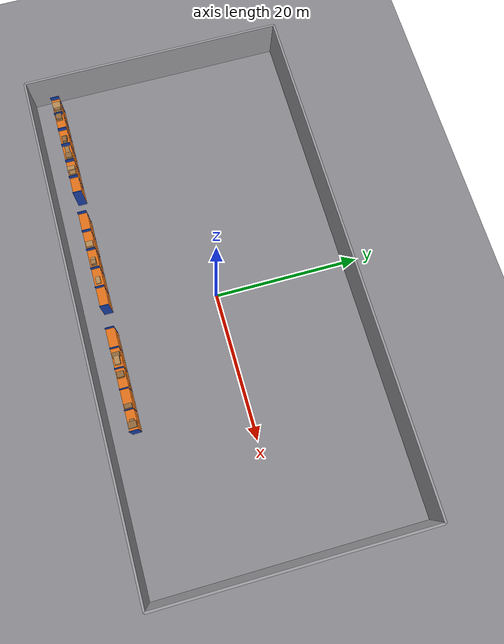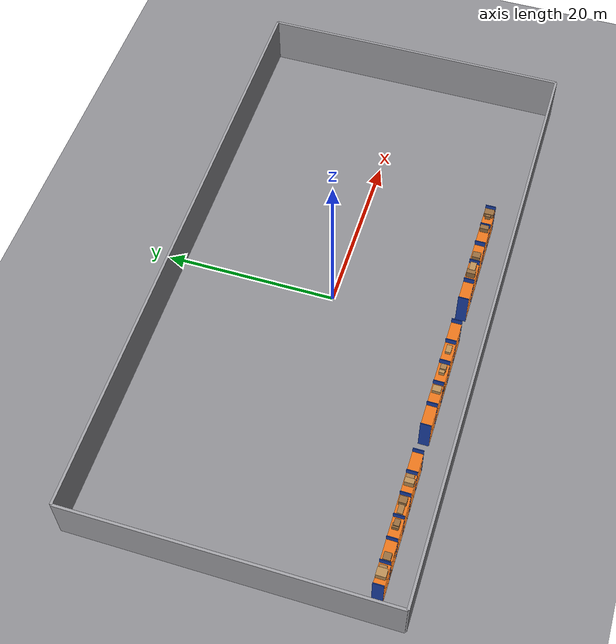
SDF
<sdf version="1.9">
 <world name="warehouse">
  <model name="ground_plane">
   <static>true</static>
   <link name="link">
    <collision name="collision">
     <geometry><plane><normal>0 0 1</normal><size>1 1</size></plane></geometry>
    </collision>
    <visual name="visual">
     <geometry><plane><normal>0 0 1</normal><size>200 100</size></plane></geometry>
     <material>
      <ambient>0.55 0.55 0.57 1</ambient>
      <diffuse>0.55 0.55 0.57 1</diffuse>
      <specular>0.1 0.1 0.1 1</specular>
     </material>
    </visual>
   </link>
  </model>
  <model name="walls">
   <static>true</static>
   <link name="link">
    <collision name="n_c">
     <pose>0.000 18.150 3.000 0 0 0</pose>
     <geometry><box><size>70.300 0.300 6.000</size></box></geometry>
    </collision>
    <visual name="n_v">
     <pose>0.000 18.150 3.000 0 0 0</pose>
     <geometry><box><size>70.300 0.300 6.000</size></box></geometry>
     <material>
      <ambient>0.62 0.62 0.64 1</ambient>
      <diffuse>0.62 0.62 0.64 1</diffuse>
      <specular>0.1 0.1 0.1 1</specular>
     </material>
    </visual>
    <collision name="s_c">
     <pose>0.000 -18.150 3.000 0 0 0</pose>
     <geometry><box><size>70.300 0.300 6.000</size></box></geometry>
    </collision>
    <visual name="s_v">
     <pose>0.000 -18.150 3.000 0 0 0</pose>
     <geometry><box><size>70.300 0.300 6.000</size></box></geometry>
     <material>
      <ambient>0.62 0.62 0.64 1</ambient>
      <diffuse>0.62 0.62 0.64 1</diffuse>
      <specular>0.1 0.1 0.1 1</specular>
     </material>
    </visual>
    <collision name="e_c">
     <pose>35.150 0.000 3.000 0 0 0</pose>
     <geometry><box><size>0.300 36.300 6.000</size></box></geometry>
    </collision>
    <visual name="e_v">
     <pose>35.150 0.000 3.000 0 0 0</pose>
     <geometry><box><size>0.300 36.300 6.000</size></box></geometry>
     <material>
      <ambient>0.62 0.62 0.64 1</ambient>
      <diffuse>0.62 0.62 0.64 1</diffuse>
      <specular>0.1 0.1 0.1 1</specular>
     </material>
    </visual>
    <collision name="w_c">
     <pose>-35.150 0.000 3.000 0 0 0</pose>
     <geometry><box><size>0.300 36.300 6.000</size></box></geometry>
    </collision>
    <visual name="w_v">
     <pose>-35.150 0.000 3.000 0 0 0</pose>
     <geometry><box><size>0.300 36.300 6.000</size></box></geometry>
     <material>
      <ambient>0.62 0.62 0.64 1</ambient>
      <diffuse>0.62 0.62 0.64 1</diffuse>
      <specular>0.1 0.1 0.1 1</specular>
     </material>
    </visual>
   </link>
  </model>
  <model name="rack0">
   <static>true</static>
   <link name="link">
    <collision name="up0_c">
     <pose>-33.000 -14.700 2.250 0 0 0</pose>
     <geometry><box><size>0.080 1.200 4.500</size></box></geometry>
    </collision>
    <visual name="up0_v">
     <pose>-33.000 -14.700 2.250 0 0 0</pose>
     <geometry><box><size>0.080 1.200 4.500</size></box></geometry>
     <material>
      <ambient>0.1 0.25 0.65 1</ambient>
      <diffuse>0.1 0.25 0.65 1</diffuse>
      <specular>0.1 0.1 0.1 1</specular>
     </material>
    </visual>
    <collision name="up1_c">
     <pose>-30.500 -14.700 2.250 0 0 0</pose>
     <geometry><box><size>0.080 1.200 4.500</size></box></geometry>
    </collision>
    <visual name="up1_v">
     <pose>-30.500 -14.700 2.250 0 0 0</pose>
     <geometry><box><size>0.080 1.200 4.500</size></box></geometry>
     <material>
      <ambient>0.1 0.25 0.65 1</ambient>
      <diffuse>0.1 0.25 0.65 1</diffuse>
      <specular>0.1 0.1 0.1 1</specular>
     </material>
    </visual>
    <collision name="up2_c">
     <pose>-28.000 -14.700 2.250 0 0 0</pose>
     <geometry><box><size>0.080 1.200 4.500</size></box></geometry>
    </collision>
    <visual name="up2_v">
     <pose>-28.000 -14.700 2.250 0 0 0</pose>
     <geometry><box><size>0.080 1.200 4.500</size></box></geometry>
     <material>
      <ambient>0.1 0.25 0.65 1</ambient>
      <diffuse>0.1 0.25 0.65 1</diffuse>
      <specular>0.1 0.1 0.1 1</specular>
     </material>
    </visual>
    <collision name="up3_c">
     <pose>-25.500 -14.700 2.250 0 0 0</pose>
     <geometry><box><size>0.080 1.200 4.500</size></box></geometry>
    </collision>
    <visual name="up3_v">
     <pose>-25.500 -14.700 2.250 0 0 0</pose>
     <geometry><box><size>0.080 1.200 4.500</size></box></geometry>
     <material>
      <ambient>0.1 0.25 0.65 1</ambient>
      <diffuse>0.1 0.25 0.65 1</diffuse>
      <specular>0.1 0.1 0.1 1</specular>
     </material>
    </visual>
    <collision name="up4_c">
     <pose>-23.000 -14.700 2.250 0 0 0</pose>
     <geometry><box><size>0.080 1.200 4.500</size></box></geometry>
    </collision>
    <visual name="up4_v">
     <pose>-23.000 -14.700 2.250 0 0 0</pose>
     <geometry><box><size>0.080 1.200 4.500</size></box></geometry>
     <material>
      <ambient>0.1 0.25 0.65 1</ambient>
      <diffuse>0.1 0.25 0.65 1</diffuse>
      <specular>0.1 0.1 0.1 1</specular>
     </material>
    </visual>
    <collision name="up5_c">
     <pose>-20.500 -14.700 2.250 0 0 0</pose>
     <geometry><box><size>0.080 1.200 4.500</size></box></geometry>
    </collision>
    <visual name="up5_v">
     <pose>-20.500 -14.700 2.250 0 0 0</pose>
     <geometry><box><size>0.080 1.200 4.500</size></box></geometry>
     <material>
      <ambient>0.1 0.25 0.65 1</ambient>
      <diffuse>0.1 0.25 0.65 1</diffuse>
      <specular>0.1 0.1 0.1 1</specular>
     </material>
    </visual>
    <collision name="up6_c">
     <pose>-18.000 -14.700 2.250 0 0 0</pose>
     <geometry><box><size>0.080 1.200 4.500</size></box></geometry>
    </collision>
    <visual name="up6_v">
     <pose>-18.000 -14.700 2.250 0 0 0</pose>
     <geometry><box><size>0.080 1.200 4.500</size></box></geometry>
     <material>
      <ambient>0.1 0.25 0.65 1</ambient>
      <diffuse>0.1 0.25 0.65 1</diffuse>
      <specular>0.1 0.1 0.1 1</specular>
     </material>
    </visual>
    <collision name="sh0_c">
     <pose>-25.500 -14.700 0.150 0 0 0</pose>
     <geometry><box><size>15.000 1.200 0.050</size></box></geometry>
    </collision>
    <visual name="sh0_v">
     <pose>-25.500 -14.700 0.150 0 0 0</pose>
     <geometry><box><size>15.000 1.200 0.050</size></box></geometry>
     <material>
      <ambient>0.9 0.45 0.1 1</ambient>
      <diffuse>0.9 0.45 0.1 1</diffuse>
      <specular>0.1 0.1 0.1 1</specular>
     </material>
    </visual>
    <collision name="sh1_c">
     <pose>-25.500 -14.700 1.350 0 0 0</pose>
     <geometry><box><size>15.000 1.200 0.050</size></box></geometry>
    </collision>
    <visual name="sh1_v">
     <pose>-25.500 -14.700 1.350 0 0 0</pose>
     <geometry><box><size>15.000 1.200 0.050</size></box></geometry>
     <material>
      <ambient>0.9 0.45 0.1 1</ambient>
      <diffuse>0.9 0.45 0.1 1</diffuse>
      <specular>0.1 0.1 0.1 1</specular>
     </material>
    </visual>
    <collision name="sh2_c">
     <pose>-25.500 -14.700 2.550 0 0 0</pose>
     <geometry><box><size>15.000 1.200 0.050</size></box></geometry>
    </collision>
    <visual name="sh2_v">
     <pose>-25.500 -14.700 2.550 0 0 0</pose>
     <geometry><box><size>15.000 1.200 0.050</size></box></geometry>
     <material>
      <ambient>0.9 0.45 0.1 1</ambient>
      <diffuse>0.9 0.45 0.1 1</diffuse>
      <specular>0.1 0.1 0.1 1</specular>
     </material>
    </visual>
    <collision name="sh3_c">
     <pose>-25.500 -14.700 3.750 0 0 0</pose>
     <geometry><box><size>15.000 1.200 0.050</size></box></geometry>
    </collision>
    <visual name="sh3_v">
     <pose>-25.500 -14.700 3.750 0 0 0</pose>
     <geometry><box><size>15.000 1.200 0.050</size></box></geometry>
     <material>
      <ambient>0.9 0.45 0.1 1</ambient>
      <diffuse>0.9 0.45 0.1 1</diffuse>
      <specular>0.1 0.1 0.1 1</specular>
     </material>
    </visual>
    <collision name="c0_c">
     <pose>-31.500 -14.671 1.687 0 0 0</pose>
     <geometry><box><size>0.653 0.848 0.625</size></box></geometry>
    </collision>
    <visual name="c0_v">
     <pose>-31.500 -14.671 1.687 0 0 0</pose>
     <geometry><box><size>0.653 0.848 0.625</size></box></geometry>
     <material>
      <ambient>0.65 0.48 0.28 1</ambient>
      <diffuse>0.65 0.48 0.28 1</diffuse>
      <specular>0.1 0.1 0.1 1</specular>
     </material>
    </visual>
    <collision name="c1_c">
     <pose>-31.834 -14.678 2.776 0 0 0</pose>
     <geometry><box><size>0.760 0.981 0.401</size></box></geometry>
    </collision>
    <visual name="c1_v">
     <pose>-31.834 -14.678 2.776 0 0 0</pose>
     <geometry><box><size>0.760 0.981 0.401</size></box></geometry>
     <material>
      <ambient>0.65 0.48 0.28 1</ambient>
      <diffuse>0.65 0.48 0.28 1</diffuse>
      <specular>0.1 0.1 0.1 1</specular>
     </material>
    </visual>
    <collision name="c2_c">
     <pose>-32.440 -14.685 2.854 0 0 0</pose>
     <geometry><box><size>0.855 0.651 0.559</size></box></geometry>
    </collision>
    <visual name="c2_v">
     <pose>-32.440 -14.685 2.854 0 0 0</pose>
     <geometry><box><size>0.855 0.651 0.559</size></box></geometry>
     <material>
      <ambient>0.65 0.48 0.28 1</ambient>
      <diffuse>0.65 0.48 0.28 1</diffuse>
      <specular>0.1 0.1 0.1 1</specular>
     </material>
    </visual>
    <collision name="c3_c">
     <pose>-31.712 -14.674 4.156 0 0 0</pose>
     <geometry><box><size>0.912 1.085 0.763</size></box></geometry>
    </collision>
    <visual name="c3_v">
     <pose>-31.712 -14.674 4.156 0 0 0</pose>
     <geometry><box><size>0.912 1.085 0.763</size></box></geometry>
     <material>
      <ambient>0.72 0.55 0.33 1</ambient>
      <diffuse>0.72 0.55 0.33 1</diffuse>
      <specular>0.1 0.1 0.1 1</specular>
     </material>
    </visual>
    <collision name="c4_c">
     <pose>-31.367 -14.655 4.144 0 0 0</pose>
     <geometry><box><size>0.832 0.773 0.738</size></box></geometry>
    </collision>
    <visual name="c4_v">
     <pose>-31.367 -14.655 4.144 0 0 0</pose>
     <geometry><box><size>0.832 0.773 0.738</size></box></geometry>
     <material>
      <ambient>0.65 0.48 0.28 1</ambient>
      <diffuse>0.65 0.48 0.28 1</diffuse>
      <specular>0.1 0.1 0.1 1</specular>
     </material>
    </visual>
    <collision name="c5_c">
     <pose>-29.890 -14.717 0.590 0 0 0</pose>
     <geometry><box><size>0.612 1.096 0.830</size></box></geometry>
    </collision>
    <visual name="c5_v">
     <pose>-29.890 -14.717 0.590 0 0 0</pose>
     <geometry><box><size>0.612 1.096 0.830</size></box></geometry>
     <material>
      <ambient>0.58 0.42 0.24 1</ambient>
      <diffuse>0.58 0.42 0.24 1</diffuse>
      <specular>0.1 0.1 0.1 1</specular>
     </material>
    </visual>
    <collision name="c6_c">
     <pose>-29.573 -14.653 1.622 0 0 0</pose>
     <geometry><box><size>0.805 1.055 0.495</size></box></geometry>
    </collision>
    <visual name="c6_v">
     <pose>-29.573 -14.653 1.622 0 0 0</pose>
     <geometry><box><size>0.805 1.055 0.495</size></box></geometry>
     <material>
      <ambient>0.72 0.55 0.33 1</ambient>
      <diffuse>0.72 0.55 0.33 1</diffuse>
      <specular>0.1 0.1 0.1 1</specular>
     </material>
    </visual>
    <collision name="c7_c">
     <pose>-29.852 -14.726 1.722 0 0 0</pose>
     <geometry><box><size>1.008 0.853 0.695</size></box></geometry>
    </collision>
    <visual name="c7_v">
     <pose>-29.852 -14.726 1.722 0 0 0</pose>
     <geometry><box><size>1.008 0.853 0.695</size></box></geometry>
     <material>
      <ambient>0.72 0.55 0.33 1</ambient>
      <diffuse>0.72 0.55 0.33 1</diffuse>
      <specular>0.1 0.1 0.1 1</specular>
     </material>
    </visual>
    <collision name="c8_c">
     <pose>-28.874 -14.741 2.969 0 0 0</pose>
     <geometry><box><size>0.720 1.041 0.788</size></box></geometry>
    </collision>
    <visual name="c8_v">
     <pose>-28.874 -14.741 2.969 0 0 0</pose>
     <geometry><box><size>0.720 1.041 0.788</size></box></geometry>
     <material>
      <ambient>0.58 0.42 0.24 1</ambient>
      <diffuse>0.58 0.42 0.24 1</diffuse>
      <specular>0.1 0.1 0.1 1</specular>
     </material>
    </visual>
    <collision name="c9_c">
     <pose>-29.950 -14.746 4.097 0 0 0</pose>
     <geometry><box><size>0.813 0.797 0.645</size></box></geometry>
    </collision>
    <visual name="c9_v">
     <pose>-29.950 -14.746 4.097 0 0 0</pose>
     <geometry><box><size>0.813 0.797 0.645</size></box></geometry>
     <material>
      <ambient>0.58 0.42 0.24 1</ambient>
      <diffuse>0.58 0.42 0.24 1</diffuse>
      <specular>0.1 0.1 0.1 1</specular>
     </material>
    </visual>
    <collision name="c10_c">
     <pose>-27.438 -14.730 0.432 0 0 0</pose>
     <geometry><box><size>0.888 0.684 0.513</size></box></geometry>
    </collision>
    <visual name="c10_v">
     <pose>-27.438 -14.730 0.432 0 0 0</pose>
     <geometry><box><size>0.888 0.684 0.513</size></box></geometry>
     <material>
      <ambient>0.58 0.42 0.24 1</ambient>
      <diffuse>0.58 0.42 0.24 1</diffuse>
      <specular>0.1 0.1 0.1 1</specular>
     </material>
    </visual>
    <collision name="c11_c">
     <pose>-26.621 -14.704 0.613 0 0 0</pose>
     <geometry><box><size>0.639 0.857 0.876</size></box></geometry>
    </collision>
    <visual name="c11_v">
     <pose>-26.621 -14.704 0.613 0 0 0</pose>
     <geometry><box><size>0.639 0.857 0.876</size></box></geometry>
     <material>
      <ambient>0.72 0.55 0.33 1</ambient>
      <diffuse>0.72 0.55 0.33 1</diffuse>
      <specular>0.1 0.1 0.1 1</specular>
     </material>
    </visual>
    <collision name="c12_c">
     <pose>-26.062 -14.699 1.814 0 0 0</pose>
     <geometry><box><size>0.730 1.028 0.877</size></box></geometry>
    </collision>
    <visual name="c12_v">
     <pose>-26.062 -14.699 1.814 0 0 0</pose>
     <geometry><box><size>0.730 1.028 0.877</size></box></geometry>
     <material>
      <ambient>0.65 0.48 0.28 1</ambient>
      <diffuse>0.65 0.48 0.28 1</diffuse>
      <specular>0.1 0.1 0.1 1</specular>
     </material>
    </visual>
    <collision name="c13_c">
     <pose>-26.642 -14.730 2.993 0 0 0</pose>
     <geometry><box><size>0.756 0.628 0.835</size></box></geometry>
    </collision>
    <visual name="c13_v">
     <pose>-26.642 -14.730 2.993 0 0 0</pose>
     <geometry><box><size>0.756 0.628 0.835</size></box></geometry>
     <material>
      <ambient>0.58 0.42 0.24 1</ambient>
      <diffuse>0.58 0.42 0.24 1</diffuse>
      <specular>0.1 0.1 0.1 1</specular>
     </material>
    </visual>
    <collision name="c14_c">
     <pose>-26.306 -14.717 4.110 0 0 0</pose>
     <geometry><box><size>0.749 0.601 0.670</size></box></geometry>
    </collision>
    <visual name="c14_v">
     <pose>-26.306 -14.717 4.110 0 0 0</pose>
     <geometry><box><size>0.749 0.601 0.670</size></box></geometry>
     <material>
      <ambient>0.58 0.42 0.24 1</ambient>
      <diffuse>0.58 0.42 0.24 1</diffuse>
      <specular>0.1 0.1 0.1 1</specular>
     </material>
    </visual>
    <collision name="c15_c">
     <pose>-26.599 -14.664 4.019 0 0 0</pose>
     <geometry><box><size>0.517 0.715 0.489</size></box></geometry>
    </collision>
    <visual name="c15_v">
     <pose>-26.599 -14.664 4.019 0 0 0</pose>
     <geometry><box><size>0.517 0.715 0.489</size></box></geometry>
     <material>
      <ambient>0.58 0.42 0.24 1</ambient>
      <diffuse>0.58 0.42 0.24 1</diffuse>
      <specular>0.1 0.1 0.1 1</specular>
     </material>
    </visual>
    <collision name="c16_c">
     <pose>-23.595 -14.705 0.393 0 0 0</pose>
     <geometry><box><size>0.519 1.072 0.435</size></box></geometry>
    </collision>
    <visual name="c16_v">
     <pose>-23.595 -14.705 0.393 0 0 0</pose>
     <geometry><box><size>0.519 1.072 0.435</size></box></geometry>
     <material>
      <ambient>0.72 0.55 0.33 1</ambient>
      <diffuse>0.72 0.55 0.33 1</diffuse>
      <specular>0.1 0.1 0.1 1</specular>
     </material>
    </visual>
    <collision name="c17_c">
     <pose>-24.507 -14.743 0.531 0 0 0</pose>
     <geometry><box><size>0.650 0.655 0.712</size></box></geometry>
    </collision>
    <visual name="c17_v">
     <pose>-24.507 -14.743 0.531 0 0 0</pose>
     <geometry><box><size>0.650 0.655 0.712</size></box></geometry>
     <material>
      <ambient>0.65 0.48 0.28 1</ambient>
      <diffuse>0.65 0.48 0.28 1</diffuse>
      <specular>0.1 0.1 0.1 1</specular>
     </material>
    </visual>
    <collision name="c18_c">
     <pose>-24.255 -14.739 2.951 0 0 0</pose>
     <geometry><box><size>0.889 0.747 0.751</size></box></geometry>
    </collision>
    <visual name="c18_v">
     <pose>-24.255 -14.739 2.951 0 0 0</pose>
     <geometry><box><size>0.889 0.747 0.751</size></box></geometry>
     <material>
      <ambient>0.72 0.55 0.33 1</ambient>
      <diffuse>0.72 0.55 0.33 1</diffuse>
      <specular>0.1 0.1 0.1 1</specular>
     </material>
    </visual>
    <collision name="c19_c">
     <pose>-24.863 -14.660 2.822 0 0 0</pose>
     <geometry><box><size>0.732 0.810 0.494</size></box></geometry>
    </collision>
    <visual name="c19_v">
     <pose>-24.863 -14.660 2.822 0 0 0</pose>
     <geometry><box><size>0.732 0.810 0.494</size></box></geometry>
     <material>
      <ambient>0.58 0.42 0.24 1</ambient>
      <diffuse>0.58 0.42 0.24 1</diffuse>
      <specular>0.1 0.1 0.1 1</specular>
     </material>
    </visual>
    <collision name="c20_c">
     <pose>-24.713 -14.678 3.979 0 0 0</pose>
     <geometry><box><size>0.990 0.610 0.409</size></box></geometry>
    </collision>
    <visual name="c20_v">
     <pose>-24.713 -14.678 3.979 0 0 0</pose>
     <geometry><box><size>0.990 0.610 0.409</size></box></geometry>
     <material>
      <ambient>0.65 0.48 0.28 1</ambient>
      <diffuse>0.65 0.48 0.28 1</diffuse>
      <specular>0.1 0.1 0.1 1</specular>
     </material>
    </visual>
    <collision name="c21_c">
     <pose>-23.741 -14.652 4.082 0 0 0</pose>
     <geometry><box><size>0.767 0.853 0.613</size></box></geometry>
    </collision>
    <visual name="c21_v">
     <pose>-23.741 -14.652 4.082 0 0 0</pose>
     <geometry><box><size>0.767 0.853 0.613</size></box></geometry>
     <material>
      <ambient>0.58 0.42 0.24 1</ambient>
      <diffuse>0.58 0.42 0.24 1</diffuse>
      <specular>0.1 0.1 0.1 1</specular>
     </material>
    </visual>
    <collision name="c22_c">
     <pose>-21.624 -14.718 0.474 0 0 0</pose>
     <geometry><box><size>0.634 0.924 0.597</size></box></geometry>
    </collision>
    <visual name="c22_v">
     <pose>-21.624 -14.718 0.474 0 0 0</pose>
     <geometry><box><size>0.634 0.924 0.597</size></box></geometry>
     <material>
      <ambient>0.58 0.42 0.24 1</ambient>
      <diffuse>0.58 0.42 0.24 1</diffuse>
      <specular>0.1 0.1 0.1 1</specular>
     </material>
    </visual>
    <collision name="c23_c">
     <pose>-22.195 -14.745 0.406 0 0 0</pose>
     <geometry><box><size>0.756 0.969 0.463</size></box></geometry>
    </collision>
    <visual name="c23_v">
     <pose>-22.195 -14.745 0.406 0 0 0</pose>
     <geometry><box><size>0.756 0.969 0.463</size></box></geometry>
     <material>
      <ambient>0.65 0.48 0.28 1</ambient>
      <diffuse>0.65 0.48 0.28 1</diffuse>
      <specular>0.1 0.1 0.1 1</specular>
     </material>
    </visual>
    <collision name="c24_c">
     <pose>-21.669 -14.737 1.615 0 0 0</pose>
     <geometry><box><size>1.050 0.749 0.479</size></box></geometry>
    </collision>
    <visual name="c24_v">
     <pose>-21.669 -14.737 1.615 0 0 0</pose>
     <geometry><box><size>1.050 0.749 0.479</size></box></geometry>
     <material>
      <ambient>0.58 0.42 0.24 1</ambient>
      <diffuse>0.58 0.42 0.24 1</diffuse>
      <specular>0.1 0.1 0.1 1</specular>
     </material>
    </visual>
    <collision name="c25_c">
     <pose>-21.162 -14.693 1.780 0 0 0</pose>
     <geometry><box><size>1.027 0.619 0.810</size></box></geometry>
    </collision>
    <visual name="c25_v">
     <pose>-21.162 -14.693 1.780 0 0 0</pose>
     <geometry><box><size>1.027 0.619 0.810</size></box></geometry>
     <material>
      <ambient>0.65 0.48 0.28 1</ambient>
      <diffuse>0.65 0.48 0.28 1</diffuse>
      <specular>0.1 0.1 0.1 1</specular>
     </material>
    </visual>
    <collision name="c26_c">
     <pose>-21.476 -14.707 2.826 0 0 0</pose>
     <geometry><box><size>0.727 0.773 0.503</size></box></geometry>
    </collision>
    <visual name="c26_v">
     <pose>-21.476 -14.707 2.826 0 0 0</pose>
     <geometry><box><size>0.727 0.773 0.503</size></box></geometry>
     <material>
      <ambient>0.65 0.48 0.28 1</ambient>
      <diffuse>0.65 0.48 0.28 1</diffuse>
      <specular>0.1 0.1 0.1 1</specular>
     </material>
    </visual>
    <collision name="c27_c">
     <pose>-21.147 -14.660 4.056 0 0 0</pose>
     <geometry><box><size>0.678 0.850 0.563</size></box></geometry>
    </collision>
    <visual name="c27_v">
     <pose>-21.147 -14.660 4.056 0 0 0</pose>
     <geometry><box><size>0.678 0.850 0.563</size></box></geometry>
     <material>
      <ambient>0.65 0.48 0.28 1</ambient>
      <diffuse>0.65 0.48 0.28 1</diffuse>
      <specular>0.1 0.1 0.1 1</specular>
     </material>
    </visual>
    <collision name="c28_c">
     <pose>-21.642 -14.736 4.178 0 0 0</pose>
     <geometry><box><size>0.594 1.029 0.806</size></box></geometry>
    </collision>
    <visual name="c28_v">
     <pose>-21.642 -14.736 4.178 0 0 0</pose>
     <geometry><box><size>0.594 1.029 0.806</size></box></geometry>
     <material>
      <ambient>0.72 0.55 0.33 1</ambient>
      <diffuse>0.72 0.55 0.33 1</diffuse>
      <specular>0.1 0.1 0.1 1</specular>
     </material>
    </visual>
    <collision name="c29_c">
     <pose>-19.018 -14.702 1.796 0 0 0</pose>
     <geometry><box><size>1.059 0.772 0.841</size></box></geometry>
    </collision>
    <visual name="c29_v">
     <pose>-19.018 -14.702 1.796 0 0 0</pose>
     <geometry><box><size>1.059 0.772 0.841</size></box></geometry>
     <material>
      <ambient>0.58 0.42 0.24 1</ambient>
      <diffuse>0.58 0.42 0.24 1</diffuse>
      <specular>0.1 0.1 0.1 1</specular>
     </material>
    </visual>
    <collision name="c30_c">
     <pose>-19.798 -14.659 1.596 0 0 0</pose>
     <geometry><box><size>0.641 0.963 0.442</size></box></geometry>
    </collision>
    <visual name="c30_v">
     <pose>-19.798 -14.659 1.596 0 0 0</pose>
     <geometry><box><size>0.641 0.963 0.442</size></box></geometry>
     <material>
      <ambient>0.65 0.48 0.28 1</ambient>
      <diffuse>0.65 0.48 0.28 1</diffuse>
      <specular>0.1 0.1 0.1 1</specular>
     </material>
    </visual>
   </link>
  </model>
  <model name="rack1">
   <static>true</static>
   <link name="link">
    <collision name="up0_c">
     <pose>-15.000 -14.700 2.250 0 0 0</pose>
     <geometry><box><size>0.080 1.200 4.500</size></box></geometry>
    </collision>
    <visual name="up0_v">
     <pose>-15.000 -14.700 2.250 0 0 0</pose>
     <geometry><box><size>0.080 1.200 4.500</size></box></geometry>
     <material>
      <ambient>0.1 0.25 0.65 1</ambient>
      <diffuse>0.1 0.25 0.65 1</diffuse>
      <specular>0.1 0.1 0.1 1</specular>
     </material>
    </visual>
    <collision name="up1_c">
     <pose>-12.300 -14.700 2.250 0 0 0</pose>
     <geometry><box><size>0.080 1.200 4.500</size></box></geometry>
    </collision>
    <visual name="up1_v">
     <pose>-12.300 -14.700 2.250 0 0 0</pose>
     <geometry><box><size>0.080 1.200 4.500</size></box></geometry>
     <material>
      <ambient>0.1 0.25 0.65 1</ambient>
      <diffuse>0.1 0.25 0.65 1</diffuse>
      <specular>0.1 0.1 0.1 1</specular>
     </material>
    </visual>
    <collision name="up2_c">
     <pose>-9.600 -14.700 2.250 0 0 0</pose>
     <geometry><box><size>0.080 1.200 4.500</size></box></geometry>
    </collision>
    <visual name="up2_v">
     <pose>-9.600 -14.700 2.250 0 0 0</pose>
     <geometry><box><size>0.080 1.200 4.500</size></box></geometry>
     <material>
      <ambient>0.1 0.25 0.65 1</ambient>
      <diffuse>0.1 0.25 0.65 1</diffuse>
      <specular>0.1 0.1 0.1 1</specular>
     </material>
    </visual>
    <collision name="up3_c">
     <pose>-6.900 -14.700 2.250 0 0 0</pose>
     <geometry><box><size>0.080 1.200 4.500</size></box></geometry>
    </collision>
    <visual name="up3_v">
     <pose>-6.900 -14.700 2.250 0 0 0</pose>
     <geometry><box><size>0.080 1.200 4.500</size></box></geometry>
     <material>
      <ambient>0.1 0.25 0.65 1</ambient>
      <diffuse>0.1 0.25 0.65 1</diffuse>
      <specular>0.1 0.1 0.1 1</specular>
     </material>
    </visual>
    <collision name="up4_c">
     <pose>-4.200 -14.700 2.250 0 0 0</pose>
     <geometry><box><size>0.080 1.200 4.500</size></box></geometry>
    </collision>
    <visual name="up4_v">
     <pose>-4.200 -14.700 2.250 0 0 0</pose>
     <geometry><box><size>0.080 1.200 4.500</size></box></geometry>
     <material>
      <ambient>0.1 0.25 0.65 1</ambient>
      <diffuse>0.1 0.25 0.65 1</diffuse>
      <specular>0.1 0.1 0.1 1</specular>
     </material>
    </visual>
    <collision name="up5_c">
     <pose>-1.500 -14.700 2.250 0 0 0</pose>
     <geometry><box><size>0.080 1.200 4.500</size></box></geometry>
    </collision>
    <visual name="up5_v">
     <pose>-1.500 -14.700 2.250 0 0 0</pose>
     <geometry><box><size>0.080 1.200 4.500</size></box></geometry>
     <material>
      <ambient>0.1 0.25 0.65 1</ambient>
      <diffuse>0.1 0.25 0.65 1</diffuse>
      <specular>0.1 0.1 0.1 1</specular>
     </material>
    </visual>
    <collision name="sh0_c">
     <pose>-8.250 -14.700 0.150 0 0 0</pose>
     <geometry><box><size>13.500 1.200 0.050</size></box></geometry>
    </collision>
    <visual name="sh0_v">
     <pose>-8.250 -14.700 0.150 0 0 0</pose>
     <geometry><box><size>13.500 1.200 0.050</size></box></geometry>
     <material>
      <ambient>0.9 0.45 0.1 1</ambient>
      <diffuse>0.9 0.45 0.1 1</diffuse>
      <specular>0.1 0.1 0.1 1</specular>
     </material>
    </visual>
    <collision name="sh1_c">
     <pose>-8.250 -14.700 1.350 0 0 0</pose>
     <geometry><box><size>13.500 1.200 0.050</size></box></geometry>
    </collision>
    <visual name="sh1_v">
     <pose>-8.250 -14.700 1.350 0 0 0</pose>
     <geometry><box><size>13.500 1.200 0.050</size></box></geometry>
     <material>
      <ambient>0.9 0.45 0.1 1</ambient>
      <diffuse>0.9 0.45 0.1 1</diffuse>
      <specular>0.1 0.1 0.1 1</specular>
     </material>
    </visual>
    <collision name="sh2_c">
     <pose>-8.250 -14.700 2.550 0 0 0</pose>
     <geometry><box><size>13.500 1.200 0.050</size></box></geometry>
    </collision>
    <visual name="sh2_v">
     <pose>-8.250 -14.700 2.550 0 0 0</pose>
     <geometry><box><size>13.500 1.200 0.050</size></box></geometry>
     <material>
      <ambient>0.9 0.45 0.1 1</ambient>
      <diffuse>0.9 0.45 0.1 1</diffuse>
      <specular>0.1 0.1 0.1 1</specular>
     </material>
    </visual>
    <collision name="sh3_c">
     <pose>-8.250 -14.700 3.750 0 0 0</pose>
     <geometry><box><size>13.500 1.200 0.050</size></box></geometry>
    </collision>
    <visual name="sh3_v">
     <pose>-8.250 -14.700 3.750 0 0 0</pose>
     <geometry><box><size>13.500 1.200 0.050</size></box></geometry>
     <material>
      <ambient>0.9 0.45 0.1 1</ambient>
      <diffuse>0.9 0.45 0.1 1</diffuse>
      <specular>0.1 0.1 0.1 1</specular>
     </material>
    </visual>
    <collision name="c0_c">
     <pose>-12.996 -14.690 0.448 0 0 0</pose>
     <geometry><box><size>0.721 0.770 0.546</size></box></geometry>
    </collision>
    <visual name="c0_v">
     <pose>-12.996 -14.690 0.448 0 0 0</pose>
     <geometry><box><size>0.721 0.770 0.546</size></box></geometry>
     <material>
      <ambient>0.58 0.42 0.24 1</ambient>
      <diffuse>0.58 0.42 0.24 1</diffuse>
      <specular>0.1 0.1 0.1 1</specular>
     </material>
    </visual>
    <collision name="c1_c">
     <pose>-14.231 -14.746 0.513 0 0 0</pose>
     <geometry><box><size>1.032 0.668 0.676</size></box></geometry>
    </collision>
    <visual name="c1_v">
     <pose>-14.231 -14.746 0.513 0 0 0</pose>
     <geometry><box><size>1.032 0.668 0.676</size></box></geometry>
     <material>
      <ambient>0.65 0.48 0.28 1</ambient>
      <diffuse>0.65 0.48 0.28 1</diffuse>
      <specular>0.1 0.1 0.1 1</specular>
     </material>
    </visual>
    <collision name="c2_c">
     <pose>-13.226 -14.712 1.729 0 0 0</pose>
     <geometry><box><size>0.997 0.770 0.708</size></box></geometry>
    </collision>
    <visual name="c2_v">
     <pose>-13.226 -14.712 1.729 0 0 0</pose>
     <geometry><box><size>0.997 0.770 0.708</size></box></geometry>
     <material>
      <ambient>0.58 0.42 0.24 1</ambient>
      <diffuse>0.58 0.42 0.24 1</diffuse>
      <specular>0.1 0.1 0.1 1</specular>
     </material>
    </visual>
    <collision name="c3_c">
     <pose>-13.601 -14.739 2.849 0 0 0</pose>
     <geometry><box><size>1.071 0.782 0.548</size></box></geometry>
    </collision>
    <visual name="c3_v">
     <pose>-13.601 -14.739 2.849 0 0 0</pose>
     <geometry><box><size>1.071 0.782 0.548</size></box></geometry>
     <material>
      <ambient>0.72 0.55 0.33 1</ambient>
      <diffuse>0.72 0.55 0.33 1</diffuse>
      <specular>0.1 0.1 0.1 1</specular>
     </material>
    </visual>
    <collision name="c4_c">
     <pose>-11.845 -14.726 2.996 0 0 0</pose>
     <geometry><box><size>0.555 0.658 0.843</size></box></geometry>
    </collision>
    <visual name="c4_v">
     <pose>-11.845 -14.726 2.996 0 0 0</pose>
     <geometry><box><size>0.555 0.658 0.843</size></box></geometry>
     <material>
      <ambient>0.58 0.42 0.24 1</ambient>
      <diffuse>0.58 0.42 0.24 1</diffuse>
      <specular>0.1 0.1 0.1 1</specular>
     </material>
    </visual>
    <collision name="c5_c">
     <pose>-10.353 -14.706 4.015 0 0 0</pose>
     <geometry><box><size>0.771 0.940 0.479</size></box></geometry>
    </collision>
    <visual name="c5_v">
     <pose>-10.353 -14.706 4.015 0 0 0</pose>
     <geometry><box><size>0.771 0.940 0.479</size></box></geometry>
     <material>
      <ambient>0.72 0.55 0.33 1</ambient>
      <diffuse>0.72 0.55 0.33 1</diffuse>
      <specular>0.1 0.1 0.1 1</specular>
     </material>
    </visual>
    <collision name="c6_c">
     <pose>-8.738 -14.718 0.454 0 0 0</pose>
     <geometry><box><size>0.830 0.956 0.557</size></box></geometry>
    </collision>
    <visual name="c6_v">
     <pose>-8.738 -14.718 0.454 0 0 0</pose>
     <geometry><box><size>0.830 0.956 0.557</size></box></geometry>
     <material>
      <ambient>0.65 0.48 0.28 1</ambient>
      <diffuse>0.65 0.48 0.28 1</diffuse>
      <specular>0.1 0.1 0.1 1</specular>
     </material>
    </visual>
    <collision name="c7_c">
     <pose>-8.057 -14.705 0.449 0 0 0</pose>
     <geometry><box><size>0.506 1.091 0.548</size></box></geometry>
    </collision>
    <visual name="c7_v">
     <pose>-8.057 -14.705 0.449 0 0 0</pose>
     <geometry><box><size>0.506 1.091 0.548</size></box></geometry>
     <material>
      <ambient>0.72 0.55 0.33 1</ambient>
      <diffuse>0.72 0.55 0.33 1</diffuse>
      <specular>0.1 0.1 0.1 1</specular>
     </material>
    </visual>
    <collision name="c8_c">
     <pose>-8.814 -14.728 1.817 0 0 0</pose>
     <geometry><box><size>1.048 1.085 0.885</size></box></geometry>
    </collision>
    <visual name="c8_v">
     <pose>-8.814 -14.728 1.817 0 0 0</pose>
     <geometry><box><size>1.048 1.085 0.885</size></box></geometry>
     <material>
      <ambient>0.58 0.42 0.24 1</ambient>
      <diffuse>0.58 0.42 0.24 1</diffuse>
      <specular>0.1 0.1 0.1 1</specular>
     </material>
    </visual>
    <collision name="c9_c">
     <pose>-8.559 -14.725 2.910 0 0 0</pose>
     <geometry><box><size>0.897 0.730 0.671</size></box></geometry>
    </collision>
    <visual name="c9_v">
     <pose>-8.559 -14.725 2.910 0 0 0</pose>
     <geometry><box><size>0.897 0.730 0.671</size></box></geometry>
     <material>
      <ambient>0.65 0.48 0.28 1</ambient>
      <diffuse>0.65 0.48 0.28 1</diffuse>
      <specular>0.1 0.1 0.1 1</specular>
     </material>
    </visual>
    <collision name="c10_c">
     <pose>-8.868 -14.693 2.963 0 0 0</pose>
     <geometry><box><size>0.992 0.645 0.777</size></box></geometry>
    </collision>
    <visual name="c10_v">
     <pose>-8.868 -14.693 2.963 0 0 0</pose>
     <geometry><box><size>0.992 0.645 0.777</size></box></geometry>
     <material>
      <ambient>0.72 0.55 0.33 1</ambient>
      <diffuse>0.72 0.55 0.33 1</diffuse>
      <specular>0.1 0.1 0.1 1</specular>
     </material>
    </visual>
    <collision name="c11_c">
     <pose>-7.834 -14.692 4.022 0 0 0</pose>
     <geometry><box><size>1.080 0.621 0.493</size></box></geometry>
    </collision>
    <visual name="c11_v">
     <pose>-7.834 -14.692 4.022 0 0 0</pose>
     <geometry><box><size>1.080 0.621 0.493</size></box></geometry>
     <material>
      <ambient>0.72 0.55 0.33 1</ambient>
      <diffuse>0.72 0.55 0.33 1</diffuse>
      <specular>0.1 0.1 0.1 1</specular>
     </material>
    </visual>
    <collision name="c12_c">
     <pose>-7.680 -14.741 4.128 0 0 0</pose>
     <geometry><box><size>0.648 0.650 0.706</size></box></geometry>
    </collision>
    <visual name="c12_v">
     <pose>-7.680 -14.741 4.128 0 0 0</pose>
     <geometry><box><size>0.648 0.650 0.706</size></box></geometry>
     <material>
      <ambient>0.65 0.48 0.28 1</ambient>
      <diffuse>0.65 0.48 0.28 1</diffuse>
      <specular>0.1 0.1 0.1 1</specular>
     </material>
    </visual>
    <collision name="c13_c">
     <pose>-5.158 -14.714 3.977 0 0 0</pose>
     <geometry><box><size>0.938 0.611 0.405</size></box></geometry>
    </collision>
    <visual name="c13_v">
     <pose>-5.158 -14.714 3.977 0 0 0</pose>
     <geometry><box><size>0.938 0.611 0.405</size></box></geometry>
     <material>
      <ambient>0.72 0.55 0.33 1</ambient>
      <diffuse>0.72 0.55 0.33 1</diffuse>
      <specular>0.1 0.1 0.1 1</specular>
     </material>
    </visual>
    <collision name="c14_c">
     <pose>-2.832 -14.683 0.457 0 0 0</pose>
     <geometry><box><size>0.561 0.989 0.564</size></box></geometry>
    </collision>
    <visual name="c14_v">
     <pose>-2.832 -14.683 0.457 0 0 0</pose>
     <geometry><box><size>0.561 0.989 0.564</size></box></geometry>
     <material>
      <ambient>0.65 0.48 0.28 1</ambient>
      <diffuse>0.65 0.48 0.28 1</diffuse>
      <specular>0.1 0.1 0.1 1</specular>
     </material>
    </visual>
    <collision name="c15_c">
     <pose>-2.828 -14.658 1.602 0 0 0</pose>
     <geometry><box><size>0.993 0.760 0.453</size></box></geometry>
    </collision>
    <visual name="c15_v">
     <pose>-2.828 -14.658 1.602 0 0 0</pose>
     <geometry><box><size>0.993 0.760 0.453</size></box></geometry>
     <material>
      <ambient>0.72 0.55 0.33 1</ambient>
      <diffuse>0.72 0.55 0.33 1</diffuse>
      <specular>0.1 0.1 0.1 1</specular>
     </material>
    </visual>
   </link>
  </model>
  <model name="rack2">
   <static>true</static>
   <link name="link">
    <collision name="up0_c">
     <pose>1.500 -14.700 2.250 0 0 0</pose>
     <geometry><box><size>0.080 1.200 4.500</size></box></geometry>
    </collision>
    <visual name="up0_v">
     <pose>1.500 -14.700 2.250 0 0 0</pose>
     <geometry><box><size>0.080 1.200 4.500</size></box></geometry>
     <material>
      <ambient>0.1 0.25 0.65 1</ambient>
      <diffuse>0.1 0.25 0.65 1</diffuse>
      <specular>0.1 0.1 0.1 1</specular>
     </material>
    </visual>
    <collision name="up1_c">
     <pose>4.200 -14.700 2.250 0 0 0</pose>
     <geometry><box><size>0.080 1.200 4.500</size></box></geometry>
    </collision>
    <visual name="up1_v">
     <pose>4.200 -14.700 2.250 0 0 0</pose>
     <geometry><box><size>0.080 1.200 4.500</size></box></geometry>
     <material>
      <ambient>0.1 0.25 0.65 1</ambient>
      <diffuse>0.1 0.25 0.65 1</diffuse>
      <specular>0.1 0.1 0.1 1</specular>
     </material>
    </visual>
    <collision name="up2_c">
     <pose>6.900 -14.700 2.250 0 0 0</pose>
     <geometry><box><size>0.080 1.200 4.500</size></box></geometry>
    </collision>
    <visual name="up2_v">
     <pose>6.900 -14.700 2.250 0 0 0</pose>
     <geometry><box><size>0.080 1.200 4.500</size></box></geometry>
     <material>
      <ambient>0.1 0.25 0.65 1</ambient>
      <diffuse>0.1 0.25 0.65 1</diffuse>
      <specular>0.1 0.1 0.1 1</specular>
     </material>
    </visual>
    <collision name="up3_c">
     <pose>9.600 -14.700 2.250 0 0 0</pose>
     <geometry><box><size>0.080 1.200 4.500</size></box></geometry>
    </collision>
    <visual name="up3_v">
     <pose>9.600 -14.700 2.250 0 0 0</pose>
     <geometry><box><size>0.080 1.200 4.500</size></box></geometry>
     <material>
      <ambient>0.1 0.25 0.65 1</ambient>
      <diffuse>0.1 0.25 0.65 1</diffuse>
      <specular>0.1 0.1 0.1 1</specular>
     </material>
    </visual>
    <collision name="up4_c">
     <pose>12.300 -14.700 2.250 0 0 0</pose>
     <geometry><box><size>0.080 1.200 4.500</size></box></geometry>
    </collision>
    <visual name="up4_v">
     <pose>12.300 -14.700 2.250 0 0 0</pose>
     <geometry><box><size>0.080 1.200 4.500</size></box></geometry>
     <material>
      <ambient>0.1 0.25 0.65 1</ambient>
      <diffuse>0.1 0.25 0.65 1</diffuse>
      <specular>0.1 0.1 0.1 1</specular>
     </material>
    </visual>
    <collision name="up5_c">
     <pose>15.000 -14.700 2.250 0 0 0</pose>
     <geometry><box><size>0.080 1.200 4.500</size></box></geometry>
    </collision>
    <visual name="up5_v">
     <pose>15.000 -14.700 2.250 0 0 0</pose>
     <geometry><box><size>0.080 1.200 4.500</size></box></geometry>
     <material>
      <ambient>0.1 0.25 0.65 1</ambient>
      <diffuse>0.1 0.25 0.65 1</diffuse>
      <specular>0.1 0.1 0.1 1</specular>
     </material>
    </visual>
    <collision name="sh0_c">
     <pose>8.250 -14.700 0.150 0 0 0</pose>
     <geometry><box><size>13.500 1.200 0.050</size></box></geometry>
    </collision>
    <visual name="sh0_v">
     <pose>8.250 -14.700 0.150 0 0 0</pose>
     <geometry><box><size>13.500 1.200 0.050</size></box></geometry>
     <material>
      <ambient>0.9 0.45 0.1 1</ambient>
      <diffuse>0.9 0.45 0.1 1</diffuse>
      <specular>0.1 0.1 0.1 1</specular>
     </material>
    </visual>
    <collision name="sh1_c">
     <pose>8.250 -14.700 1.350 0 0 0</pose>
     <geometry><box><size>13.500 1.200 0.050</size></box></geometry>
    </collision>
    <visual name="sh1_v">
     <pose>8.250 -14.700 1.350 0 0 0</pose>
     <geometry><box><size>13.500 1.200 0.050</size></box></geometry>
     <material>
      <ambient>0.9 0.45 0.1 1</ambient>
      <diffuse>0.9 0.45 0.1 1</diffuse>
      <specular>0.1 0.1 0.1 1</specular>
     </material>
    </visual>
    <collision name="sh2_c">
     <pose>8.250 -14.700 2.550 0 0 0</pose>
     <geometry><box><size>13.500 1.200 0.050</size></box></geometry>
    </collision>
    <visual name="sh2_v">
     <pose>8.250 -14.700 2.550 0 0 0</pose>
     <geometry><box><size>13.500 1.200 0.050</size></box></geometry>
     <material>
      <ambient>0.9 0.45 0.1 1</ambient>
      <diffuse>0.9 0.45 0.1 1</diffuse>
      <specular>0.1 0.1 0.1 1</specular>
     </material>
    </visual>
    <collision name="sh3_c">
     <pose>8.250 -14.700 3.750 0 0 0</pose>
     <geometry><box><size>13.500 1.200 0.050</size></box></geometry>
    </collision>
    <visual name="sh3_v">
     <pose>8.250 -14.700 3.750 0 0 0</pose>
     <geometry><box><size>13.500 1.200 0.050</size></box></geometry>
     <material>
      <ambient>0.9 0.45 0.1 1</ambient>
      <diffuse>0.9 0.45 0.1 1</diffuse>
      <specular>0.1 0.1 0.1 1</specular>
     </material>
    </visual>
    <collision name="c0_c">
     <pose>3.114 -14.695 0.531 0 0 0</pose>
     <geometry><box><size>0.968 1.011 0.712</size></box></geometry>
    </collision>
    <visual name="c0_v">
     <pose>3.114 -14.695 0.531 0 0 0</pose>
     <geometry><box><size>0.968 1.011 0.712</size></box></geometry>
     <material>
      <ambient>0.58 0.42 0.24 1</ambient>
      <diffuse>0.58 0.42 0.24 1</diffuse>
      <specular>0.1 0.1 0.1 1</specular>
     </material>
    </visual>
    <collision name="c1_c">
     <pose>3.257 -14.683 1.614 0 0 0</pose>
     <geometry><box><size>0.607 0.816 0.479</size></box></geometry>
    </collision>
    <visual name="c1_v">
     <pose>3.257 -14.683 1.614 0 0 0</pose>
     <geometry><box><size>0.607 0.816 0.479</size></box></geometry>
     <material>
      <ambient>0.72 0.55 0.33 1</ambient>
      <diffuse>0.72 0.55 0.33 1</diffuse>
      <specular>0.1 0.1 0.1 1</specular>
     </material>
    </visual>
    <collision name="c2_c">
     <pose>3.382 -14.705 2.910 0 0 0</pose>
     <geometry><box><size>0.985 0.875 0.671</size></box></geometry>
    </collision>
    <visual name="c2_v">
     <pose>3.382 -14.705 2.910 0 0 0</pose>
     <geometry><box><size>0.985 0.875 0.671</size></box></geometry>
     <material>
      <ambient>0.72 0.55 0.33 1</ambient>
      <diffuse>0.72 0.55 0.33 1</diffuse>
      <specular>0.1 0.1 0.1 1</specular>
     </material>
    </visual>
    <collision name="c3_c">
     <pose>3.289 -14.657 2.896 0 0 0</pose>
     <geometry><box><size>1.002 0.686 0.643</size></box></geometry>
    </collision>
    <visual name="c3_v">
     <pose>3.289 -14.657 2.896 0 0 0</pose>
     <geometry><box><size>1.002 0.686 0.643</size></box></geometry>
     <material>
      <ambient>0.58 0.42 0.24 1</ambient>
      <diffuse>0.58 0.42 0.24 1</diffuse>
      <specular>0.1 0.1 0.1 1</specular>
     </material>
    </visual>
    <collision name="c4_c">
     <pose>5.183 -14.694 0.621 0 0 0</pose>
     <geometry><box><size>0.856 0.669 0.892</size></box></geometry>
    </collision>
    <visual name="c4_v">
     <pose>5.183 -14.694 0.621 0 0 0</pose>
     <geometry><box><size>0.856 0.669 0.892</size></box></geometry>
     <material>
      <ambient>0.65 0.48 0.28 1</ambient>
      <diffuse>0.65 0.48 0.28 1</diffuse>
      <specular>0.1 0.1 0.1 1</specular>
     </material>
    </visual>
    <collision name="c5_c">
     <pose>6.221 -14.658 1.654 0 0 0</pose>
     <geometry><box><size>0.792 0.689 0.559</size></box></geometry>
    </collision>
    <visual name="c5_v">
     <pose>6.221 -14.658 1.654 0 0 0</pose>
     <geometry><box><size>0.792 0.689 0.559</size></box></geometry>
     <material>
      <ambient>0.58 0.42 0.24 1</ambient>
      <diffuse>0.58 0.42 0.24 1</diffuse>
      <specular>0.1 0.1 0.1 1</specular>
     </material>
    </visual>
    <collision name="c6_c">
     <pose>5.039 -14.709 2.895 0 0 0</pose>
     <geometry><box><size>0.643 0.848 0.639</size></box></geometry>
    </collision>
    <visual name="c6_v">
     <pose>5.039 -14.709 2.895 0 0 0</pose>
     <geometry><box><size>0.643 0.848 0.639</size></box></geometry>
     <material>
      <ambient>0.58 0.42 0.24 1</ambient>
      <diffuse>0.58 0.42 0.24 1</diffuse>
      <specular>0.1 0.1 0.1 1</specular>
     </material>
    </visual>
    <collision name="c7_c">
     <pose>5.923 -14.685 4.205 0 0 0</pose>
     <geometry><box><size>1.083 0.710 0.861</size></box></geometry>
    </collision>
    <visual name="c7_v">
     <pose>5.923 -14.685 4.205 0 0 0</pose>
     <geometry><box><size>1.083 0.710 0.861</size></box></geometry>
     <material>
      <ambient>0.72 0.55 0.33 1</ambient>
      <diffuse>0.72 0.55 0.33 1</diffuse>
      <specular>0.1 0.1 0.1 1</specular>
     </material>
    </visual>
    <collision name="c8_c">
     <pose>5.192 -14.681 4.196 0 0 0</pose>
     <geometry><box><size>0.596 0.983 0.842</size></box></geometry>
    </collision>
    <visual name="c8_v">
     <pose>5.192 -14.681 4.196 0 0 0</pose>
     <geometry><box><size>0.596 0.983 0.842</size></box></geometry>
     <material>
      <ambient>0.58 0.42 0.24 1</ambient>
      <diffuse>0.58 0.42 0.24 1</diffuse>
      <specular>0.1 0.1 0.1 1</specular>
     </material>
    </visual>
    <collision name="c9_c">
     <pose>9.006 -14.693 0.599 0 0 0</pose>
     <geometry><box><size>0.857 1.028 0.848</size></box></geometry>
    </collision>
    <visual name="c9_v">
     <pose>9.006 -14.693 0.599 0 0 0</pose>
     <geometry><box><size>0.857 1.028 0.848</size></box></geometry>
     <material>
      <ambient>0.65 0.48 0.28 1</ambient>
      <diffuse>0.65 0.48 0.28 1</diffuse>
      <specular>0.1 0.1 0.1 1</specular>
     </material>
    </visual>
    <collision name="c10_c">
     <pose>8.669 -14.672 0.610 0 0 0</pose>
     <geometry><box><size>0.593 0.813 0.871</size></box></geometry>
    </collision>
    <visual name="c10_v">
     <pose>8.669 -14.672 0.610 0 0 0</pose>
     <geometry><box><size>0.593 0.813 0.871</size></box></geometry>
     <material>
      <ambient>0.72 0.55 0.33 1</ambient>
      <diffuse>0.72 0.55 0.33 1</diffuse>
      <specular>0.1 0.1 0.1 1</specular>
     </material>
    </visual>
    <collision name="c11_c">
     <pose>9.125 -14.698 1.711 0 0 0</pose>
     <geometry><box><size>0.730 1.023 0.672</size></box></geometry>
    </collision>
    <visual name="c11_v">
     <pose>9.125 -14.698 1.711 0 0 0</pose>
     <geometry><box><size>0.730 1.023 0.672</size></box></geometry>
     <material>
      <ambient>0.65 0.48 0.28 1</ambient>
      <diffuse>0.65 0.48 0.28 1</diffuse>
      <specular>0.1 0.1 0.1 1</specular>
     </material>
    </visual>
    <collision name="c12_c">
     <pose>8.876 -14.654 1.642 0 0 0</pose>
     <geometry><box><size>0.985 0.914 0.534</size></box></geometry>
    </collision>
    <visual name="c12_v">
     <pose>8.876 -14.654 1.642 0 0 0</pose>
     <geometry><box><size>0.985 0.914 0.534</size></box></geometry>
     <material>
      <ambient>0.65 0.48 0.28 1</ambient>
      <diffuse>0.65 0.48 0.28 1</diffuse>
      <specular>0.1 0.1 0.1 1</specular>
     </material>
    </visual>
    <collision name="c13_c">
     <pose>8.046 -14.670 3.018 0 0 0</pose>
     <geometry><box><size>0.767 1.062 0.886</size></box></geometry>
    </collision>
    <visual name="c13_v">
     <pose>8.046 -14.670 3.018 0 0 0</pose>
     <geometry><box><size>0.767 1.062 0.886</size></box></geometry>
     <material>
      <ambient>0.72 0.55 0.33 1</ambient>
      <diffuse>0.72 0.55 0.33 1</diffuse>
      <specular>0.1 0.1 0.1 1</specular>
     </material>
    </visual>
    <collision name="c14_c">
     <pose>7.750 -14.707 4.097 0 0 0</pose>
     <geometry><box><size>0.763 0.911 0.644</size></box></geometry>
    </collision>
    <visual name="c14_v">
     <pose>7.750 -14.707 4.097 0 0 0</pose>
     <geometry><box><size>0.763 0.911 0.644</size></box></geometry>
     <material>
      <ambient>0.58 0.42 0.24 1</ambient>
      <diffuse>0.58 0.42 0.24 1</diffuse>
      <specular>0.1 0.1 0.1 1</specular>
     </material>
    </visual>
    <collision name="c15_c">
     <pose>7.808 -14.675 4.049 0 0 0</pose>
     <geometry><box><size>0.745 0.659 0.548</size></box></geometry>
    </collision>
    <visual name="c15_v">
     <pose>7.808 -14.675 4.049 0 0 0</pose>
     <geometry><box><size>0.745 0.659 0.548</size></box></geometry>
     <material>
      <ambient>0.65 0.48 0.28 1</ambient>
      <diffuse>0.65 0.48 0.28 1</diffuse>
      <specular>0.1 0.1 0.1 1</specular>
     </material>
    </visual>
    <collision name="c16_c">
     <pose>10.524 -14.724 0.618 0 0 0</pose>
     <geometry><box><size>0.847 0.615 0.887</size></box></geometry>
    </collision>
    <visual name="c16_v">
     <pose>10.524 -14.724 0.618 0 0 0</pose>
     <geometry><box><size>0.847 0.615 0.887</size></box></geometry>
     <material>
      <ambient>0.65 0.48 0.28 1</ambient>
      <diffuse>0.65 0.48 0.28 1</diffuse>
      <specular>0.1 0.1 0.1 1</specular>
     </material>
    </visual>
    <collision name="c17_c">
     <pose>11.107 -14.725 0.443 0 0 0</pose>
     <geometry><box><size>0.671 0.871 0.537</size></box></geometry>
    </collision>
    <visual name="c17_v">
     <pose>11.107 -14.725 0.443 0 0 0</pose>
     <geometry><box><size>0.671 0.871 0.537</size></box></geometry>
     <material>
      <ambient>0.58 0.42 0.24 1</ambient>
      <diffuse>0.58 0.42 0.24 1</diffuse>
      <specular>0.1 0.1 0.1 1</specular>
     </material>
    </visual>
    <collision name="c18_c">
     <pose>11.400 -14.693 1.789 0 0 0</pose>
     <geometry><box><size>0.827 0.845 0.828</size></box></geometry>
    </collision>
    <visual name="c18_v">
     <pose>11.400 -14.693 1.789 0 0 0</pose>
     <geometry><box><size>0.827 0.845 0.828</size></box></geometry>
     <material>
      <ambient>0.72 0.55 0.33 1</ambient>
      <diffuse>0.72 0.55 0.33 1</diffuse>
      <specular>0.1 0.1 0.1 1</specular>
     </material>
    </visual>
    <collision name="c19_c">
     <pose>11.847 -14.674 4.111 0 0 0</pose>
     <geometry><box><size>0.571 0.974 0.673</size></box></geometry>
    </collision>
    <visual name="c19_v">
     <pose>11.847 -14.674 4.111 0 0 0</pose>
     <geometry><box><size>0.571 0.974 0.673</size></box></geometry>
     <material>
      <ambient>0.58 0.42 0.24 1</ambient>
      <diffuse>0.58 0.42 0.24 1</diffuse>
      <specular>0.1 0.1 0.1 1</specular>
     </material>
    </visual>
    <collision name="c20_c">
     <pose>13.344 -14.738 1.765 0 0 0</pose>
     <geometry><box><size>0.762 0.939 0.779</size></box></geometry>
    </collision>
    <visual name="c20_v">
     <pose>13.344 -14.738 1.765 0 0 0</pose>
     <geometry><box><size>0.762 0.939 0.779</size></box></geometry>
     <material>
      <ambient>0.58 0.42 0.24 1</ambient>
      <diffuse>0.58 0.42 0.24 1</diffuse>
      <specular>0.1 0.1 0.1 1</specular>
     </material>
    </visual>
    <collision name="c21_c">
     <pose>14.140 -14.682 1.675 0 0 0</pose>
     <geometry><box><size>0.770 0.752 0.600</size></box></geometry>
    </collision>
    <visual name="c21_v">
     <pose>14.140 -14.682 1.675 0 0 0</pose>
     <geometry><box><size>0.770 0.752 0.600</size></box></geometry>
     <material>
      <ambient>0.72 0.55 0.33 1</ambient>
      <diffuse>0.72 0.55 0.33 1</diffuse>
      <specular>0.1 0.1 0.1 1</specular>
     </material>
    </visual>
    <collision name="c22_c">
     <pose>13.834 -14.662 4.044 0 0 0</pose>
     <geometry><box><size>0.622 0.602 0.539</size></box></geometry>
    </collision>
    <visual name="c22_v">
     <pose>13.834 -14.662 4.044 0 0 0</pose>
     <geometry><box><size>0.622 0.602 0.539</size></box></geometry>
     <material>
      <ambient>0.58 0.42 0.24 1</ambient>
      <diffuse>0.58 0.42 0.24 1</diffuse>
      <specular>0.1 0.1 0.1 1</specular>
     </material>
    </visual>
    <collision name="c23_c">
     <pose>14.217 -14.709 4.090 0 0 0</pose>
     <geometry><box><size>0.807 1.094 0.631</size></box></geometry>
    </collision>
    <visual name="c23_v">
     <pose>14.217 -14.709 4.090 0 0 0</pose>
     <geometry><box><size>0.807 1.094 0.631</size></box></geometry>
     <material>
      <ambient>0.58 0.42 0.24 1</ambient>
      <diffuse>0.58 0.42 0.24 1</diffuse>
      <specular>0.1 0.1 0.1 1</specular>
     </material>
    </visual>
   </link>
  </model>
 </world>
</sdf>
